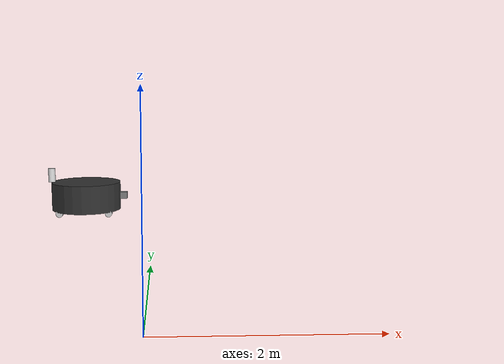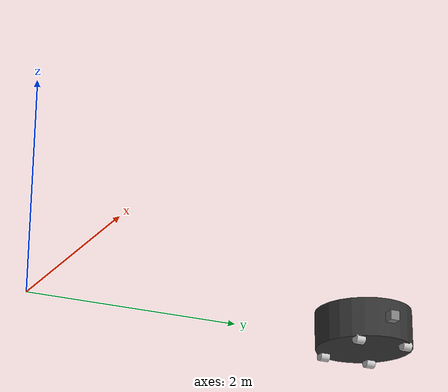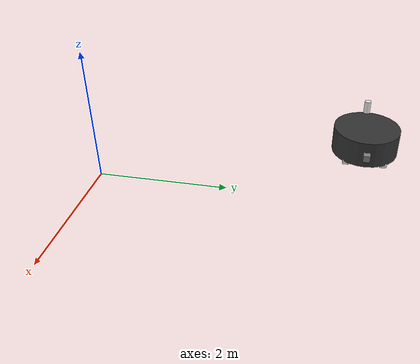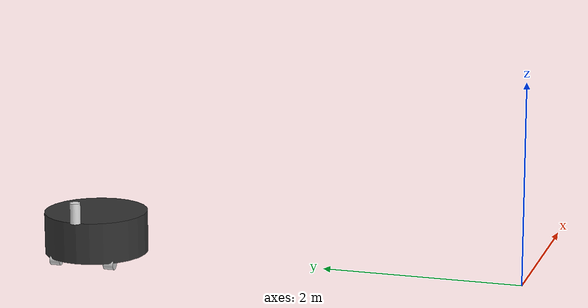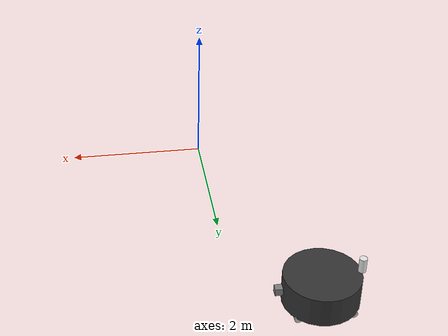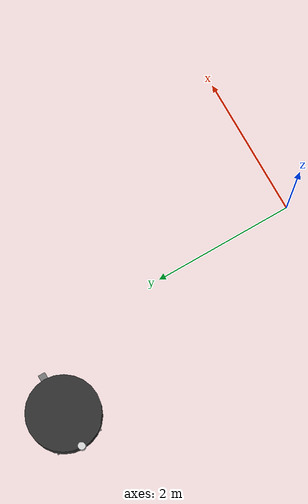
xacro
<?xml version="1.0"?>

<robot name="vacu_bot" xmlns:xacro="http://ros.org/wiki/xacro" >

  <xacro:include filename="$(find vacu_bot)/urdf/simu_gazebo_config.xacro"/>

<!--############################################ Inertial Macros ###################################-->

  <xacro:macro name="cylinder_inertial" params="radius length mass *origin">
    <inertial>
      <mass value="${mass}" />
      <xacro:insert_block name="origin" />
      <inertia ixx="${0.0833333 * mass * (3 * radius * radius + length * length)}" ixy="0.0" ixz="0.0"
        iyy="${0.0833333 * mass * (3 * radius * radius + length * length)}" iyz="0.0"
        izz="${0.5 * mass * radius * radius}" />
    </inertial>
  </xacro:macro>

  <xacro:macro name="box_inertial" params="x y z mass *origin">
    <inertial>
      <mass value="${mass}" />
      <xacro:insert_block name="origin" />
      <inertia ixx="${0.0833333 * mass * (y*y + z*z)}" ixy="0.0" ixz="0.0"
        iyy="${0.0833333 * mass * (x*x + z*z)}" iyz="0.0"
        izz="${0.0833333 * mass * (x*x + y*y)}" />
    </inertial>
  </xacro:macro>

<!--############################################ robot defintion ###################################-->

  <link name="base_footprint">
    <visual>
      <geometry>
        <box size="0.0001 0.0001 0.0001"/>
      </geometry>
      <origin rpy="0 0 0" xyz="0 0 0"/>
    </visual>
  </link>

  <link name="base_link">
    <visual>
      <geometry>
        <cylinder length="0.4" radius="0.5"/>
      </geometry>
      <material
        name="">
        <color
          rgba="0.2 0.2 0.2 1" />
      </material>
      <origin rpy="0 0 0" xyz="0 0 0"/>
    </visual>
    <collision>
      <geometry>
        <cylinder length="0.4" radius="0.5"/>
      </geometry>
      <origin rpy="0 0 0" xyz="0 0 0"/>
    </collision>
    <xacro:cylinder_inertial radius="0.5" length="0.4" mass="30">
        <origin xyz="0.0 0.0 0.0" rpy="0 0 0"/>
    </xacro:cylinder_inertial>
  </link>

  <link name="front_right_wheel">
    <visual>
      <geometry>
        <cylinder length="0.1" radius="0.05"/>
      </geometry>
      <material
        name="">
        <color
          rgba="0.8 0.8 0.8 1" />
      </material>
      <origin rpy="1.57075 0 0" xyz="0 0 0"/>
    </visual>
    <collision>
      <geometry>
        <cylinder length="0.1" radius="0.05"/>
      </geometry>
      <origin rpy="1.57075 0 0" xyz="0 0 0"/>
    </collision>
    <xacro:cylinder_inertial radius="0.05" length="0.1" mass="1">
        <origin xyz="0.0 0.0 0.0" rpy="0 0 0"/>
    </xacro:cylinder_inertial>
  </link>
<!--############## selber gemacht #######-->
   <link name="front_left_wheel">
    <visual>
      <geometry>
        <cylinder length="0.1" radius="0.05"/>
      </geometry>
      <material
        name="">
        <color
          rgba="0.8 0.8 0.8 1" />
      </material>
      <origin rpy="1.57075 0 0" xyz="0 0 0"/>
    </visual>
    <collision>
      <geometry>
        <cylinder length="0.1" radius="0.05"/>
      </geometry>
      <origin rpy="1.57075 0 0" xyz="0 0 0"/>
    </collision>
    <xacro:cylinder_inertial radius="0.05" length="0.1" mass="1">
        <origin xyz="0.0 0.0 0.0" rpy="0 0 0"/>
    </xacro:cylinder_inertial>
  </link>

   <link name="rear_right_wheel">
    <visual>
      <geometry>
        <cylinder length="0.1" radius="0.05"/>
      </geometry>
      <material
        name="">
        <color
          rgba="0.8 0.8 0.8 1" />
      </material>
      <origin rpy="1.57075 0 0" xyz="0 0 0"/>
    </visual>
    <collision>
      <geometry>
        <cylinder length="0.1" radius="0.05"/>
      </geometry>
      <origin rpy="1.57075 0 0" xyz="0 0 0"/>
    </collision>
    <xacro:cylinder_inertial radius="0.05" length="0.1" mass="1">
        <origin xyz="0.0 0.0 0.0" rpy="0 0 0"/>
    </xacro:cylinder_inertial>
  </link>

   <link name="rear_left_wheel">
    <visual>
      <geometry>
        <cylinder length="0.1" radius="0.05"/>
      </geometry>
      <material
        name="">
        <color
          rgba="0.8 0.8 0.8 1" />
      </material>
      <origin rpy="1.57075 0 0" xyz="0 0 0"/>
    </visual>
    <collision>
      <geometry>
        <cylinder length="0.1" radius="0.05"/>
      </geometry>
      <origin rpy="1.57075 0 0" xyz="0 0 0"/>
    </collision>
    <xacro:cylinder_inertial radius="0.05" length="0.1" mass="1">
        <origin xyz="0.0 0.0 0.0" rpy="0 0 0"/>
    </xacro:cylinder_inertial>
  </link>

<!--############################################ sensor defintions ###################################-->

   <link name="camera_link">
    <visual>
      <geometry>
         <box size="0.1 0.1 0.1"/>
      </geometry>
      <material
        name="">
        <color
          rgba="0.5 0.5 0.5 1" />
      </material>
      <origin rpy="0 0 0" xyz="0 0 0"/>
    </visual>
    <collision>
      <geometry>
         <box size="0.1 0.1 0.1"/>
      </geometry>
      <origin rpy="0 0 0" xyz="0 0 0"/>
    </collision>
    <xacro:box_inertial x="0.1" y="0.1" z="0.1" mass="0.5">
        <origin xyz="0.0 0.0 0.0" rpy="0 0 0"/>
    </xacro:box_inertial>
  </link>

   <link name="lidar">
    <visual>
      <geometry>
         <cylinder length="0.2" radius="0.05"/>
      </geometry>
      <material
        name="">
        <color
          rgba="0.9 0.9 0.9 1" />
      </material>
      <origin rpy="0 0 0" xyz="0 0 0"/>
    </visual>
    <collision>
      <geometry>
         <cylinder length="0.2" radius="0.05"/>
      </geometry>
      <origin rpy="0 0 0" xyz="0 0 0"/>
    </collision>
    <xacro:cylinder_inertial radius="0.05" length="0.2" mass="0.5">
        <origin xyz="0.0 0.0 0.0" rpy="0 0 0"/>
    </xacro:cylinder_inertial>
  </link>

<!--############################################ joint defintions ###################################-->

  <joint name="base_footprint_to_base_link" type="fixed">
    <parent link="base_footprint"/>
    <child link="base_link"/>
    <origin xyz="-1.0 4.0 0.5" rpy="0 0 0"/>
  </joint>

<!--############## selber gemacht #######-->

<joint name="base_to_front_right_wheel" type="continuous">
	<parent link="base_link"/>
	<child link="front_right_wheel"/>
	<origin xyz="0.35 -0.275 -0.22" rpy="0 0 0"/>
	<axis xyz="0 1 0"/>

</joint>

<joint name="base_to_front_left_wheel" type="continuous">
	<parent link="base_link"/>
	<child link="front_left_wheel"/>
	<origin xyz="0.35 0.275 -0.22" rpy="0 0 0"/>
	<axis xyz="0 1 0"/>
</joint>

<joint name="base_to_rear_right_wheel" type="continuous">
	<parent link="base_link"/>
	<child link="rear_right_wheel"/>
	<origin xyz="-0.35 -0.275 -0.22" rpy="0 0 0"/>
	<axis xyz="0 1 0"/>
</joint>

<joint name="base_to_rear_left_wheel" type="continuous">
	<parent link="base_link"/>
	<child link="rear_left_wheel"/>
	<origin xyz="-0.35 0.275 -0.22" rpy="0 0 0"/>
	<axis xyz="0 1 0"/>
</joint>
  <joint name="base_to_camera" type="fixed">
    <parent link="base_link"/>
    <child link="camera_link"/>
    <origin xyz="0.55 0 0"/>
  </joint>

  <joint name="base_to_lidar" type="fixed">
    <parent link="base_link"/>
    <child link="lidar"/>
    <origin xyz="-0.5 0 0.3"/>
  </joint>

<!--############################################ Aufruf von Makros ###################################-->
 <!--xacro:holonomic_steering/-->
 <xacro:skid_steer_drive_controller/>
 <xacro:gazebo_ros_controller/>
 <xacro:gazebo_camera/>
 <xacro:gazebo_lidar/>

</robot>
